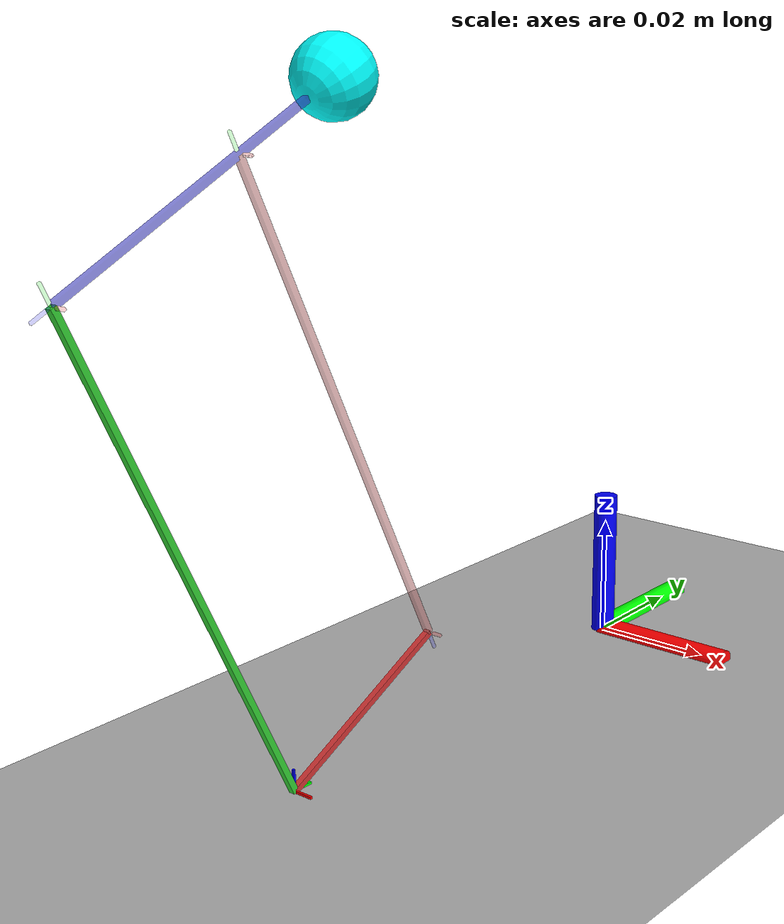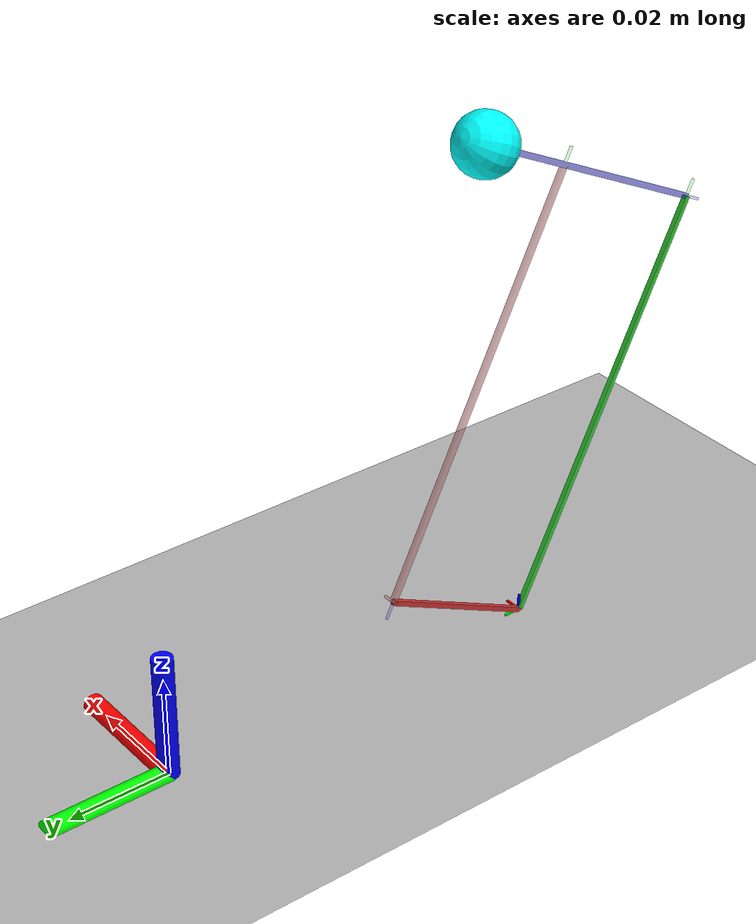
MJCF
<mujoco model="spatial_parallelogram_parallel_training_v3">
  <compiler angle="degree" coordinate="local" eulerseq="xyz" inertiafromgeom="true"/>

  <option timestep="0.001" gravity="0 0 -9.81" iterations="50" tolerance="1e-10"/>

  <visual>
    <headlight diffuse="0.4 0.4 0.4" ambient="0.2 0.2 0.2" specular="0.1 0.1 0.1"/>
    <rgba haze="0.15 0.25 0.35 1"/>
    <global azimuth="120" elevation="-20"/>
  </visual>

  <default>
    <geom type="box" rgba="0.7 0.7 0.7 0.6" contype="0" conaffinity="0"/>
    <joint damping="0.05" armature="0.01" frictionloss="0.01"/>
    <default class="viz_axis">
        <geom type="box" size="0.0008 0.0002 0.0002" contype="0" conaffinity="0" rgba="1 1 1 0.1"/>
    </default>
    <default class="global_axis">
        <geom type="cylinder" size="0.002" contype="0" conaffinity="0"/>
    </default>
  </default>

  <asset>
    <texture type="skybox" builtin="gradient" rgb1="0.3 0.5 0.7" rgb2="0 0 0" width="512" height="3072"/>
    <texture type="2d" name="groundplane" builtin="checker" rgb1="0.2 0.3 0.4" rgb2="0.1 0.2 0.3" width="100" height="100"/>
    <material name="groundplane" texture="groundplane" texrepeat="10 10"/>
  </asset>

  <worldbody>

    <camera name="closeup" pos="0.08 -0.14 0.1" xyaxes="0.866 0.5 0 -0.3 0.5 0.8" mode="trackcom"/>

    <geom name="floor" size="0 0 .05" type="plane" material="groundplane" condim="3"/>
    <light pos="0 0 3" dir="0 0 -1" directional="true" castshadow="true" diffuse="0.8 0.8 0.8" specular="0.3 0.3 0.3"/>

    <body name="world_axis" pos="0 0 0">
        <geom class="global_axis" fromto="0 0 0  0.025 0 0" rgba="1 0 0 1"/>
        <geom class="global_axis" fromto="0 0 0  0 0.025 0" rgba="0 1 0 1"/>
        <geom class="global_axis" fromto="0 0 0  0 0 0.025" rgba="0 0 1 1"/>
    </body>

    <body name="figer_right" pos="0 -0.08 0">

        <body name="Frame_O" pos="0 0 0">
            <geom class="viz_axis" pos="0.0017 0 0" size="0.0017 0.0002 0.0002" rgba="1 0 0 1"/>
            <geom class="viz_axis" pos="0 0.0017 0" size="0.0002 0.0017 0.0002" rgba="0 1 0 1"/>
            <geom class="viz_axis" pos="0 0 0.0017" size="0.0002 0.0002 0.0017" rgba="0 0 1 1"/>
        </body>

        <!-- ==================== OA Chain ==================== -->
        <body name="Link_OA_Chain" pos="0 0 0" euler="116 0 0">
          <joint name="OA_active_x"  type="hinge" axis="1 0 0" range="0 140" damping="0.5"/>
          <joint name="OA_passive_z" type="hinge" axis="0 0 1" range="-60 60" damping="0.1"/>
          <joint name="OA_active_y"  type="hinge" axis="0 1 0" range="-16 16" damping="0.5"/>

          <geom name="geom_OA" fromto="0 0 0  0 0 -0.034" size="0.0005" rgba="0.8 0.2 0.2 1"/>

          <body name="Link_AC" pos="0 0 -0.034" euler="90 0 0">
            <body name="Frame_A" pos="0 0 0">
                <geom class="viz_axis" pos="0.0017 0 0" rgba="1 0 0 0.1"/>
                <geom class="viz_axis" pos="0 0.0017 0" size="0.0002 0.0017 0.0002" rgba="0 1 0 0.1"/>
                <geom class="viz_axis" pos="0 0 0.0017" size="0.0002 0.0002 0.0017" rgba="0 0 1 0.1"/>
            </body>

            <joint name="A_passive_x" type="hinge" axis="1 0 0" damping="0.1"/>
            <geom name="geom_AC" fromto="0 0 0  0 0 -0.085" size="0.0005" rgba="0.8 0.5 0.5 0.6"/>

            <site name="site_C_pivot_A" pos="0 0 -0.085" size="0.005" rgba="1 1 0 0"/>
            <site name="site_C_axis_A" pos="0.02 0 -0.085" size="0.003" rgba="1 0.5 0 0"/>

            <body name="Frame_C_from_A" pos="0 0 -0.085">

                <geom class="viz_axis" pos="0.0017 0 0" rgba="1 0 0 0.1"/>
                <geom class="viz_axis" pos="0 0.0017 0" size="0.0002 0.0017 0.0002" rgba="0 1 0 0.1"/>
                <geom class="viz_axis" pos="0 0 0.0017" size="0.0002 0.0002 0.0017" rgba="0 0 1 0.1"/>
            </body>
          </body>
        </body>

        <!-- ==================== OB Chain ==================== -->
        <body name="Link_OB_Chain" pos="0 0 0" euler="206 0 0">
          <joint name="OB_active_x"  type="hinge" axis="1 0 0" range="-90 50" damping="0.5"/>
          <joint name="OB_passive_z" type="hinge" axis="0 0 1" range="-180 180" damping="0.1"/>
          <joint name="OB_active_y"  type="hinge" axis="0 1 0" range="-16 16" damping="0.5"/>

          <geom name="geom_OB" fromto="0 0 0  0 0 -0.085" size="0.0005" rgba="0.2 0.8 0.2 1"/>

          <body name="Link_BCP" pos="0 0 -0.085" euler="-90 0 0">
            <body name="Frame_B" pos="0 0 0">
                <geom class="viz_axis" pos="0.0017 0 0" rgba="1 0 0 0.1"/>
                <geom class="viz_axis" pos="0 0.0017 0" size="0.0002 0.0017 0.0002" rgba="0 1 0 0.1"/>
                <geom class="viz_axis" pos="0 0 0.0017" size="0.0002 0.0002 0.0017" rgba="0 0 1 0.1"/>
            </body>

            <joint name="B_passive_x" type="hinge" axis="1 0 0" damping="0.1"/>
            <geom name="geom_BP" fromto="0 0 0  0 0 -0.054" size="0.0005" rgba="0.2 0.2 0.8 0.6" />
            <site name="site_C_pivot_B" pos="0 0 -0.034" size="0.005" rgba="1 1 0 0"/>
            <site name="site_C_axis_B" pos="0.02 0 -0.034" size="0.003" rgba="1 0.5 0 0"/>
            <body name="Frame_C_from_B" pos="0 0 -0.034">
                <geom class="viz_axis" pos="0.0017 0 0" rgba="1 0 0 0.1"/>
                <geom class="viz_axis" pos="0 0.0017 0" size="0.0002 0.0017 0.0002" rgba="0 1 0 0.1"/>
                <geom class="viz_axis" pos="0 0 0.0017" size="0.0002 0.0002 0.0017" rgba="0 0 1 0.1"/>
            </body>
            <site name="tip_P" pos="0 0 -0.054" size="0.006" rgba="0 1 1 1"/>
            <body name="Frame_P" pos="0 0 -0.054">
                <geom class="viz_axis" pos="0.0017 0 0" rgba="1 0 0 0.1"/>
                <geom class="viz_axis" pos="0 0.0017 0" size="0.0002 0.0017 0.0002" rgba="0 1 0 0.1"/>
                <geom class="viz_axis" pos="0 0 0.0017" size="0.0002 0.0002 0.0017" rgba="0 0 1 0.1"/>
            </body>
          </body>
        </body>
    </body>
  </worldbody>

  <equality>
    <connect name="C_pivot" site1="site_C_pivot_A" site2="site_C_pivot_B" solimp="0.9 0.95 0.001" solref="0.02 1"/>
    <connect name="C_axis"  site1="site_C_axis_A"  site2="site_C_axis_B"  solimp="0.9 0.95 0.001" solref="0.02 1"/>
  </equality>

  <tendon>
  <!--
    角度  -66 19
    弧度  -1.15192 0.331613
    tendon这里强制用弧度制
  -->

    <fixed name="limit_angle_diff" range="-1.15192 0.331613">
      <joint joint="OB_active_x" coef="1"/>
      <joint joint="OA_active_x" coef="-1"/>
    </fixed>

  </tendon>

  <actuator>
    <position name="act_OA_x" joint="OA_active_x" kp="10" kv="1" ctrlrange="0 2.44346"/>
    <position name="act_OA_y" joint="OA_active_y" kp="10" kv="1" ctrlrange="-0.28 0.28"/>

    <position name="act_OB_x" joint="OB_active_x" kp="10" kv="1" ctrlrange="-1.57 0.872665"/>
    <position name="act_OB_y" joint="OB_active_y" kp="10" kv="1" ctrlrange="-0.28 0.28"/>
  </actuator>

</mujoco>
